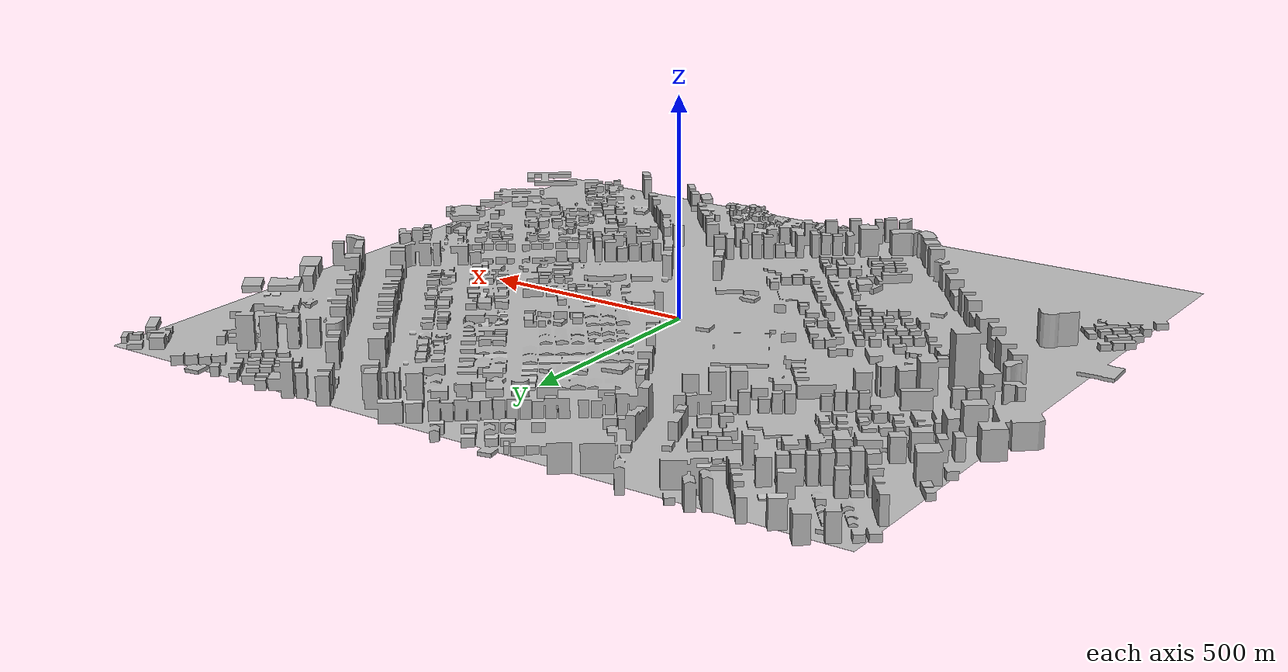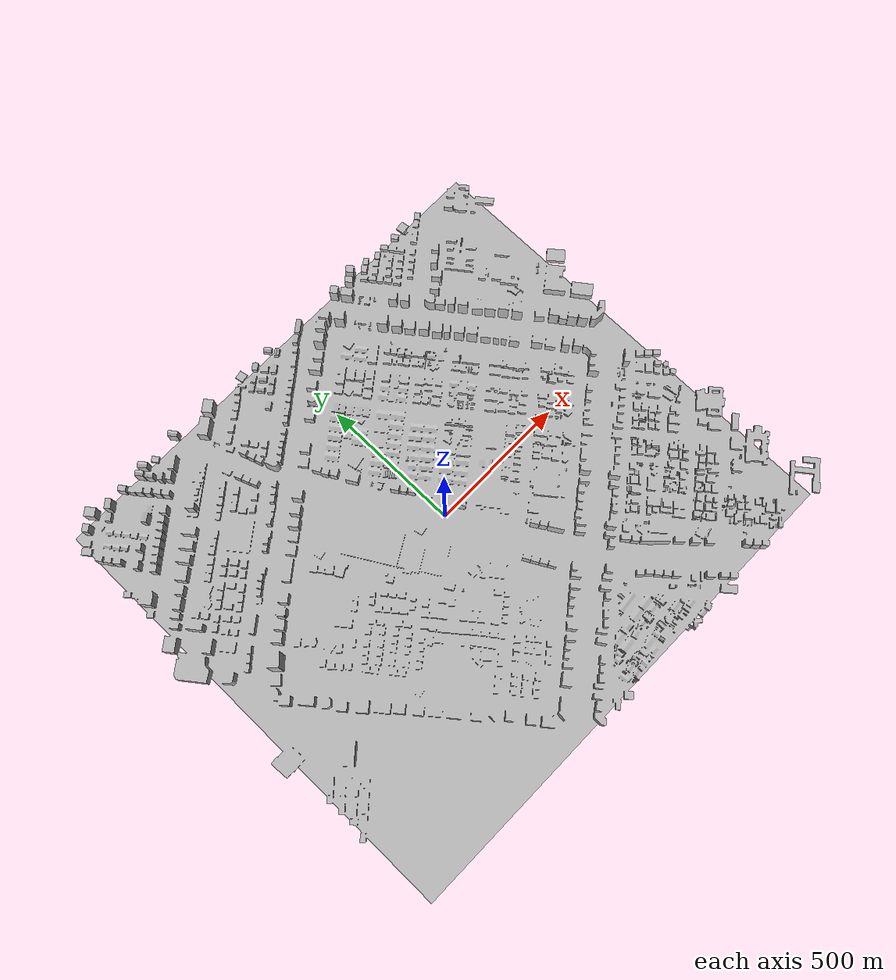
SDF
<sdf version='1.9'>
  <world name='default'>
    <physics type="ode">
      <max_step_size>0.004</max_step_size>
      <real_time_factor>1.0</real_time_factor>
      <real_time_update_rate>250</real_time_update_rate>
    </physics>
    <plugin name='gz::sim::systems::Physics' filename='gz-sim-physics-system'/>
    <plugin name='gz::sim::systems::UserCommands' filename='gz-sim-user-commands-system'/>
    <plugin name='gz::sim::systems::SceneBroadcaster' filename='gz-sim-scene-broadcaster-system'/>
    <plugin name='gz::sim::systems::Contact' filename='gz-sim-contact-system'/>
    <plugin name='gz::sim::systems::Imu' filename='gz-sim-imu-system'/>
    <plugin name='gz::sim::systems::AirPressure' filename='gz-sim-air-pressure-system'/>
    <plugin name='gz::sim::systems::ApplyLinkWrench' filename='gz-sim-apply-link-wrench-system'/>
    <plugin name='gz::sim::systems::Sensors' filename='gz-sim-sensors-system'>
      <render_engine>ogre2</render_engine>
    </plugin>
    <gui fullscreen='false'>
      <plugin name='3D View' filename='GzScene3D'>
        <gz-gui>
          <title>3D View</title>
          <property type='bool' key='showTitleBar'>0</property>
          <property type='string' key='state'>docked</property>
        </gz-gui>
        <engine>ogre2</engine>
        <scene>scene</scene>
        <ambient_light>0.5984631152222222 0.5984631152222222 0.5984631152222222</ambient_light>
        <background_color>0.8984631152222222 0.8984631152222222 0.8984631152222222</background_color>
        <camera_pose>-6 0 6 0 0.5 0</camera_pose>
      </plugin>
      <plugin name='World control' filename='WorldControl'>
        <gz-gui>
          <title>World control</title>
          <property type='bool' key='showTitleBar'>0</property>
          <property type='bool' key='resizable'>0</property>
          <property type='double' key='height'>72</property>
          <property type='double' key='width'>121</property>
          <property type='double' key='z'>1</property>
          <property type='string' key='state'>floating</property>
          <anchors target='3D View'>
            <line own='left' target='left'/>
            <line own='bottom' target='bottom'/>
          </anchors>
        </gz-gui>
        <play_pause>1</play_pause>
        <step>1</step>
        <start_paused>1</start_paused>
      </plugin>
      <plugin name='World stats' filename='WorldStats'>
        <gz-gui>
          <title>World stats</title>
          <property type='bool' key='showTitleBar'>0</property>
          <property type='bool' key='resizable'>0</property>
          <property type='double' key='height'>110</property>
          <property type='double' key='width'>290</property>
          <property type='double' key='z'>1</property>
          <property type='string' key='state'>floating</property>
          <anchors target='3D View'>
            <line own='right' target='right'/>
            <line own='bottom' target='bottom'/>
          </anchors>
        </gz-gui>
        <sim_time>1</sim_time>
        <real_time>1</real_time>
        <real_time_factor>1</real_time_factor>
        <iterations>1</iterations>
      </plugin>
      <plugin name='Entity tree' filename='EntityTree'/>
    </gui>
    <gravity>0 0 -9.8</gravity>
    <magnetic_field>6e-06 2.3e-05 -4.2e-05</magnetic_field>
    <atmosphere type='adiabatic'/>
    <scene>
      <grid>false</grid>
      <ambient>0.4 0.4 0.4 1</ambient>
      <background>0.7 0.7 0.7 1</background>
      <shadows>true</shadows>
    </scene>
    <model name='purdue'>
      <pose>0 0 0 0 0 0</pose>
      <static>true</static>
      <link name="buildings">
        <visual name="visual">
          <geometry>
            <mesh>
              <uri>model://media/AbuDhabi.dae</uri>
            </mesh>
          </geometry>
          <pose>0 0 -.5 0 0 0</pose>
        </visual>
        <collision name="collision">
          <geometry>
            <mesh>
              <uri>model://media/AbuDhabi.dae</uri>
            </mesh>
          </geometry>
          <pose>0 0 -.5 0 0 0</pose>
        </collision>
      </link>
    </model>
    <light name='sunUTC' type='directional'>
      <pose>0 0 500 0 -0 0</pose>
      <cast_shadows>true</cast_shadows>
      <intensity>1</intensity>
      <direction>0.001 0.625 -0.78</direction>
      <diffuse>0.904 0.904 0.904 1</diffuse>
      <specular>0.271 0.271 0.271 1</specular>
      <attenuation>
        <range>2000</range>
        <linear>0</linear>
        <constant>1</constant>
        <quadratic>0</quadratic>
      </attenuation>
      <spot>
        <inner_angle>0</inner_angle>
        <outer_angle>0</outer_angle>
        <falloff>0</falloff>
      </spot>
    </light>
  </world>
</sdf>
